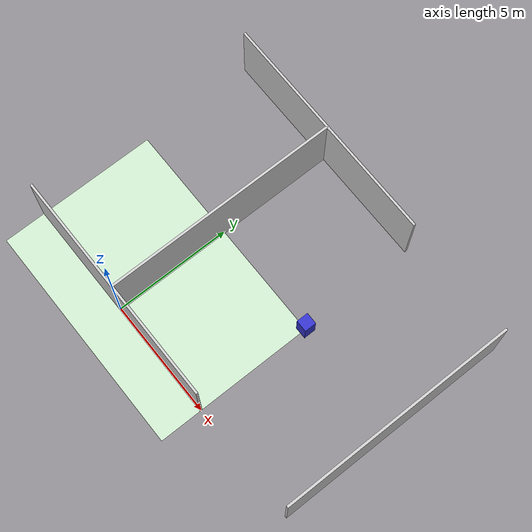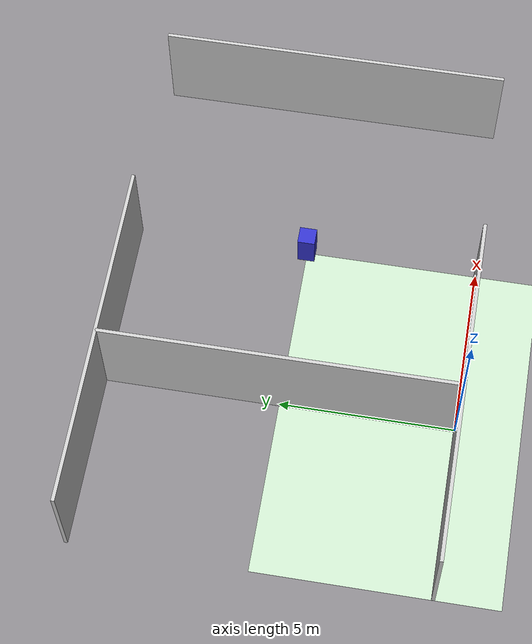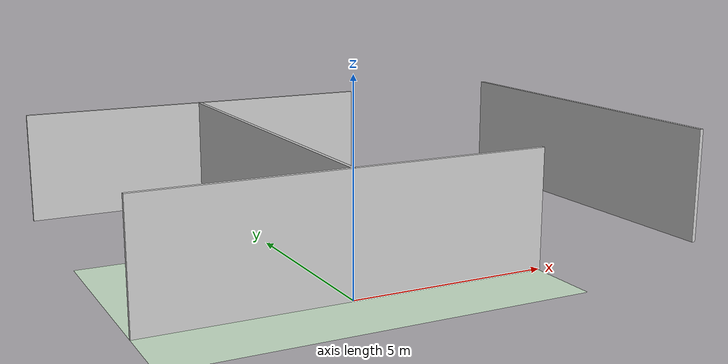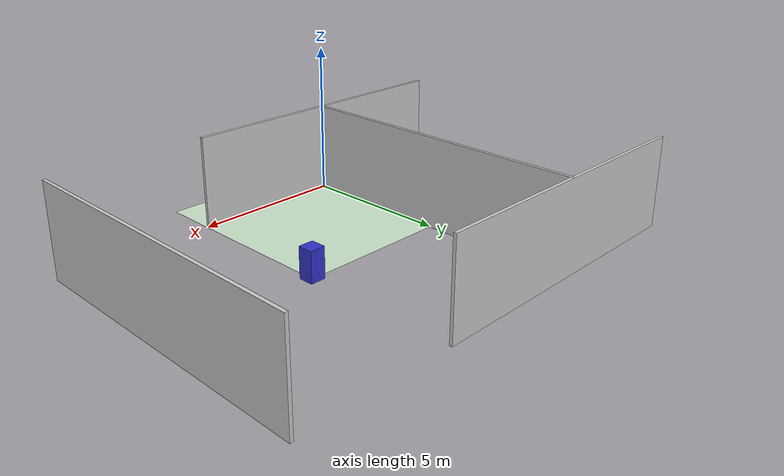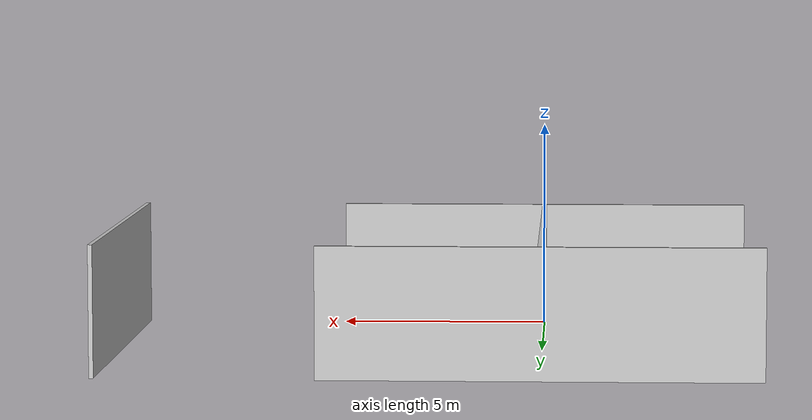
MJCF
<?xml version="1.0" ?>
<mujoco>
  <worldbody>
    <geom name="floor" type="plane" size="5.0 5.0 0.1" rgba="0.8 0.9 0.8 1"/>
    <geom name="wall_1" type="box" pos="0 0 1.5" size="5.0 0.05 1.5" rgba="0.8 0.8 0.8 1"/>
    <geom name="wall_2" type="box" pos="0 10 1.5" size="5.0 0.05 1.5" rgba="0.8 0.8 0.8 1"/>
    <geom name="wall_3" type="box" pos="0 5.0 1.5" size="0.05 5.0 1.5" rgba="0.8 0.8 0.8 1"/>
    <geom name="wall_4" type="box" pos="10 5.0 1.5" size="0.05 5.0 1.5" rgba="0.8 0.8 0.8 1"/>
    <body name="robot" pos="5.0 5.0 0.5">
      <geom type="box" size="0.25 0.25 0.5" rgba="0.2 0.2 0.8 1"/>
      <freejoint name="root"/>
    </body>
  </worldbody>
</mujoco>
